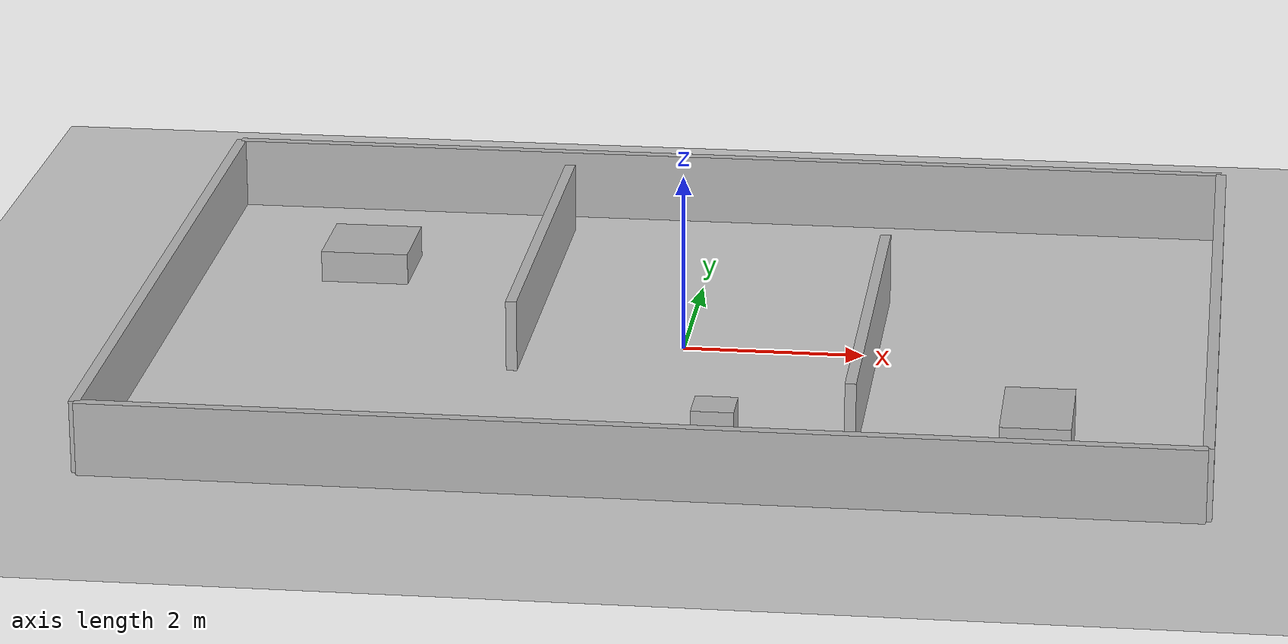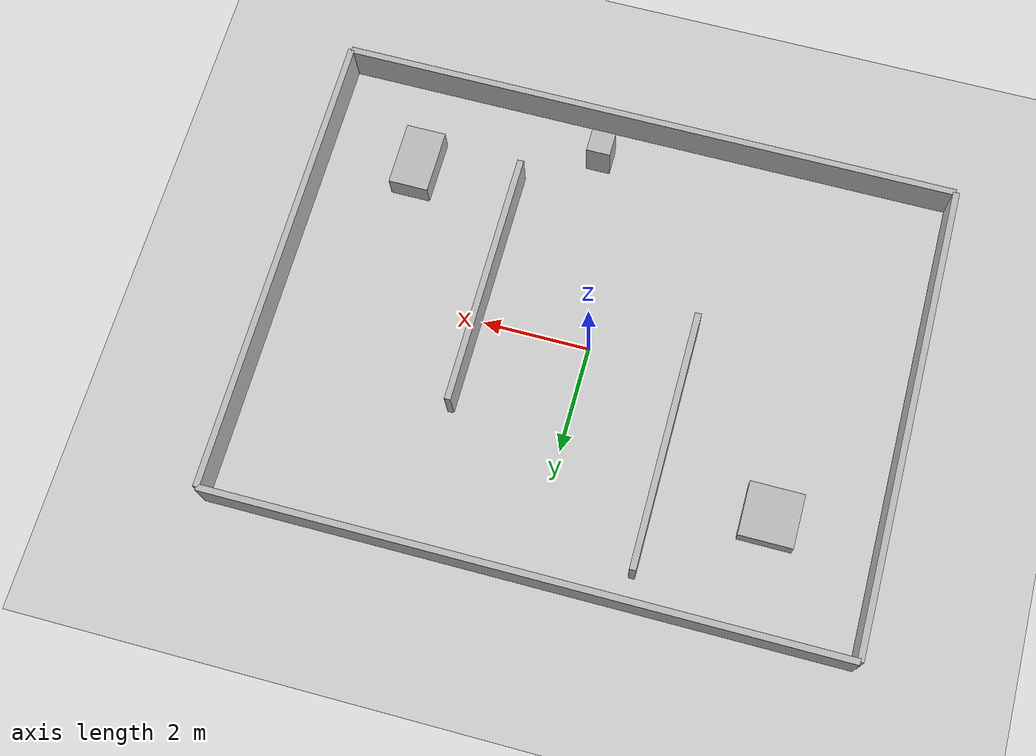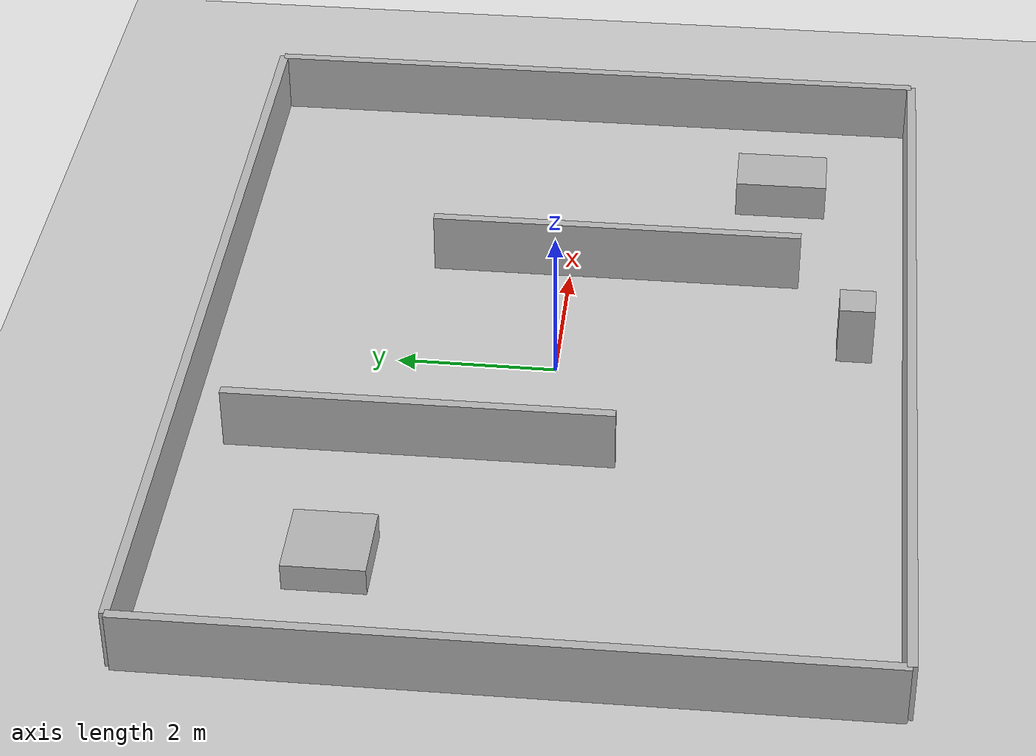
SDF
<?xml version="1.0" ?>
<!--
  三室户教学世界（轻量仿真版，约 11.7m x 8.85m，相对原版约 1.5 倍）。
  几何与 Gazebo three_room_house.sdf 保持一致。
-->
<sdf version="1.6">
  <world name="three_room_house">
    <include>
      <uri>model://sun</uri>
    </include>
    <include>
      <uri>model://ground_plane</uri>
    </include>
    <model name="house_shell">
      <static>true</static>
      <link name="north_wall">
        <pose>0 4.425 0.4 0 0 0</pose>
        <collision name="collision"><geometry><box><size>11.7 0.12 0.8</size></box></geometry></collision>
        <visual name="visual"><geometry><box><size>11.7 0.12 0.8</size></box></geometry></visual>
      </link>
      <link name="south_wall">
        <pose>0 -4.425 0.4 0 0 0</pose>
        <collision name="collision"><geometry><box><size>11.7 0.12 0.8</size></box></geometry></collision>
        <visual name="visual"><geometry><box><size>11.7 0.12 0.8</size></box></geometry></visual>
      </link>
      <link name="west_wall">
        <pose>-5.85 0 0.4 0 0 0</pose>
        <collision name="collision"><geometry><box><size>0.12 8.85 0.8</size></box></geometry></collision>
        <visual name="visual"><geometry><box><size>0.12 8.85 0.8</size></box></geometry></visual>
      </link>
      <link name="east_wall">
        <pose>5.85 0 0.4 0 0 0</pose>
        <collision name="collision"><geometry><box><size>0.12 8.85 0.8</size></box></geometry></collision>
        <visual name="visual"><geometry><box><size>0.12 8.85 0.8</size></box></geometry></visual>
      </link>
      <link name="hall_divider_left">
        <pose>-1.8 1.5 0.4 0 0 0</pose>
        <collision name="collision"><geometry><box><size>0.12 4.8 0.8</size></box></geometry></collision>
        <visual name="visual"><geometry><box><size>0.12 4.8 0.8</size></box></geometry></visual>
      </link>
      <link name="hall_divider_right">
        <pose>2.1 -0.6 0.4 0 0 0</pose>
        <collision name="collision"><geometry><box><size>0.12 4.8 0.8</size></box></geometry></collision>
        <visual name="visual"><geometry><box><size>0.12 4.8 0.8</size></box></geometry></visual>
      </link>
      <link name="table">
        <pose>-3.9 2.25 0.18 0 0 0</pose>
        <collision name="collision"><geometry><box><size>1.0 1.0 0.36</size></box></geometry></collision>
        <visual name="visual"><geometry><box><size>1.0 1.0 0.36</size></box></geometry></visual>
      </link>
      <link name="cabinet">
        <pose>4.05 -2.7 0.25 0 0 0</pose>
        <collision name="collision"><geometry><box><size>0.75 1.2 0.5</size></box></geometry></collision>
        <visual name="visual"><geometry><box><size>0.75 1.2 0.5</size></box></geometry></visual>
      </link>
      <link name="pillar">
        <pose>0.75 -3.75 0.4 0 0 0</pose>
        <collision name="collision"><geometry><box><size>0.45 0.45 0.8</size></box></geometry></collision>
        <visual name="visual"><geometry><box><size>0.45 0.45 0.8</size></box></geometry></visual>
      </link>
    </model>
  </world>
</sdf>
